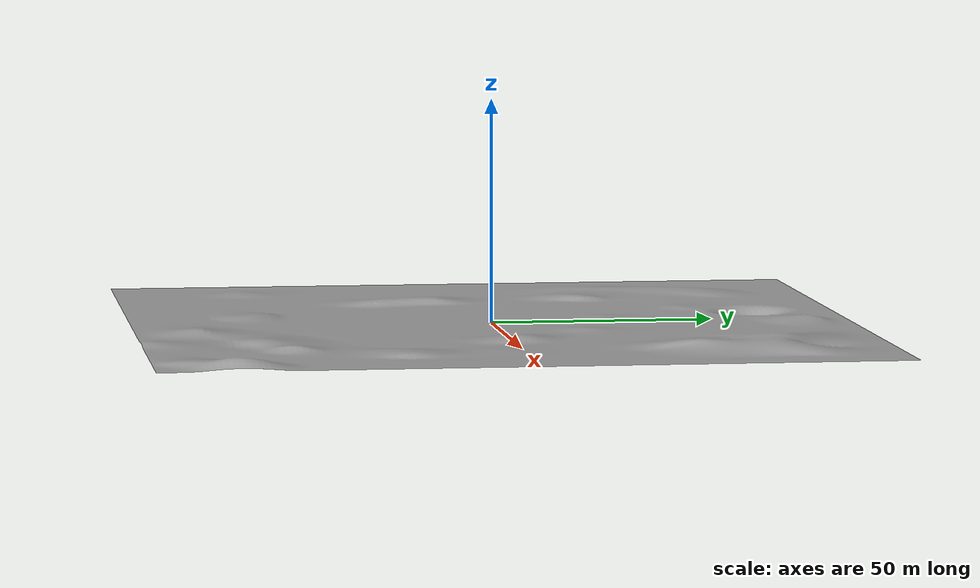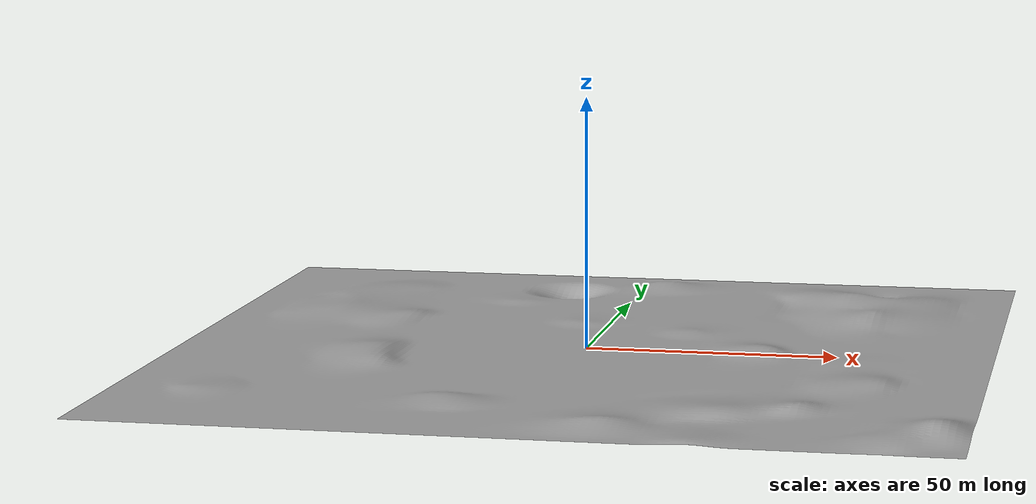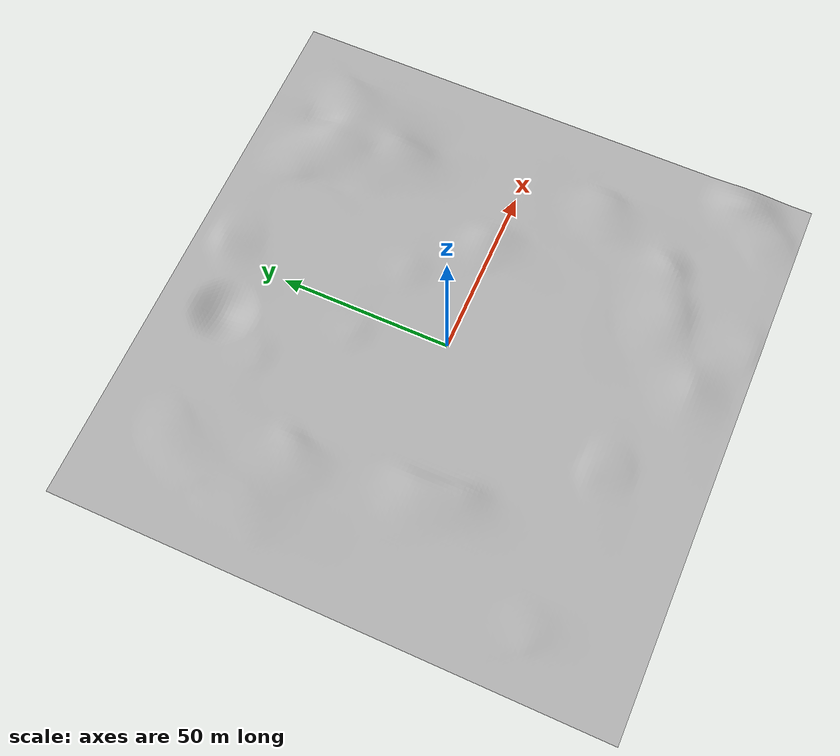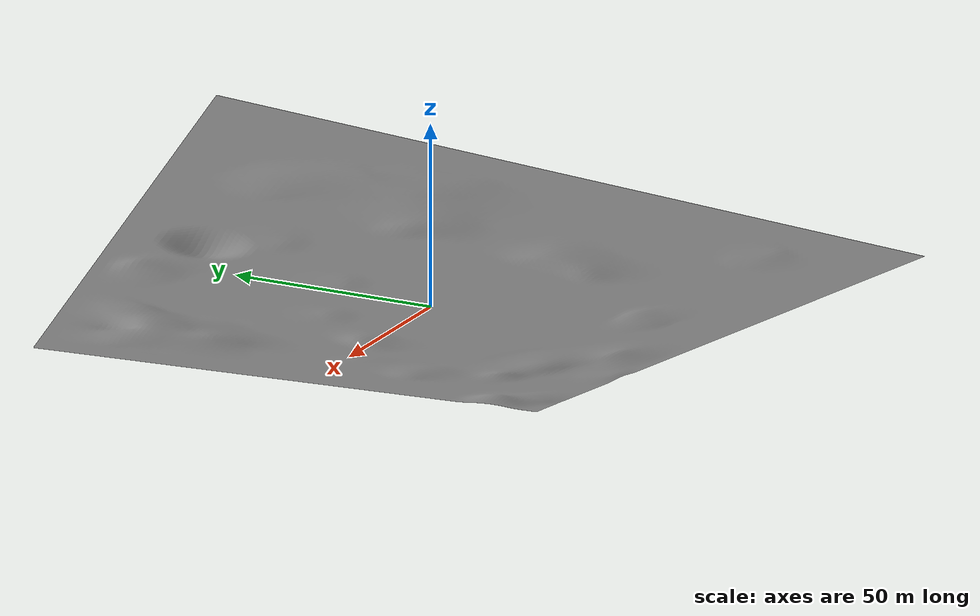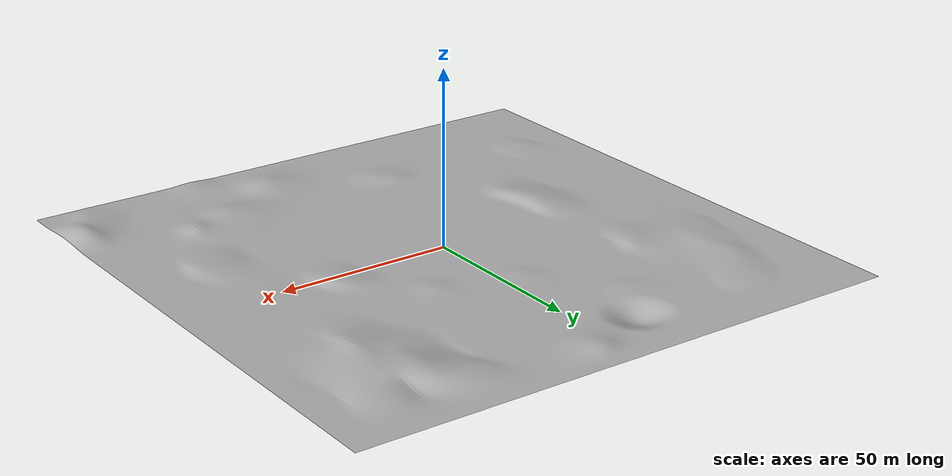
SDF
<?xml version="1.0" ?>
<sdf version="1.5">
  <model name="base_agri_world">
    <pose>0 0 0 0 0 0</pose>
    <static>true</static>
    <link name="body">
      <visual name="visual">
        <geometry>
          <mesh><uri>model://base_agri_world/media/base_agri_world.dae</uri></mesh>
        </geometry>
	  <material>
          <script>
            <uri>model://base_agri_world/media/scripts</uri>
            <uri>model://base_agri_world/media/Textures</uri>
            <name>RepeatedGrass/Diffuse</name>
          </script>
        </material>
      </visual>
      <collision name="collision">
        <geometry>
          <mesh><uri>model://base_agri_world/media/base_agri_world.dae</uri></mesh>
        </geometry>
      </collision>
    </link>
  </model>
</sdf>
